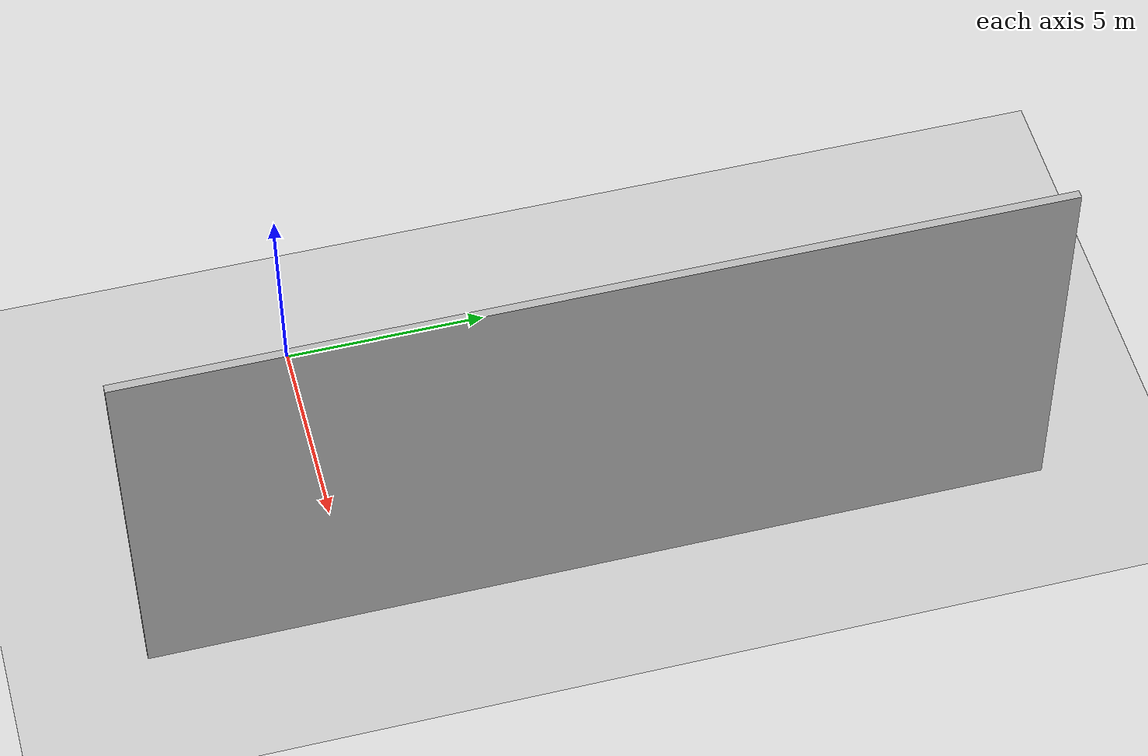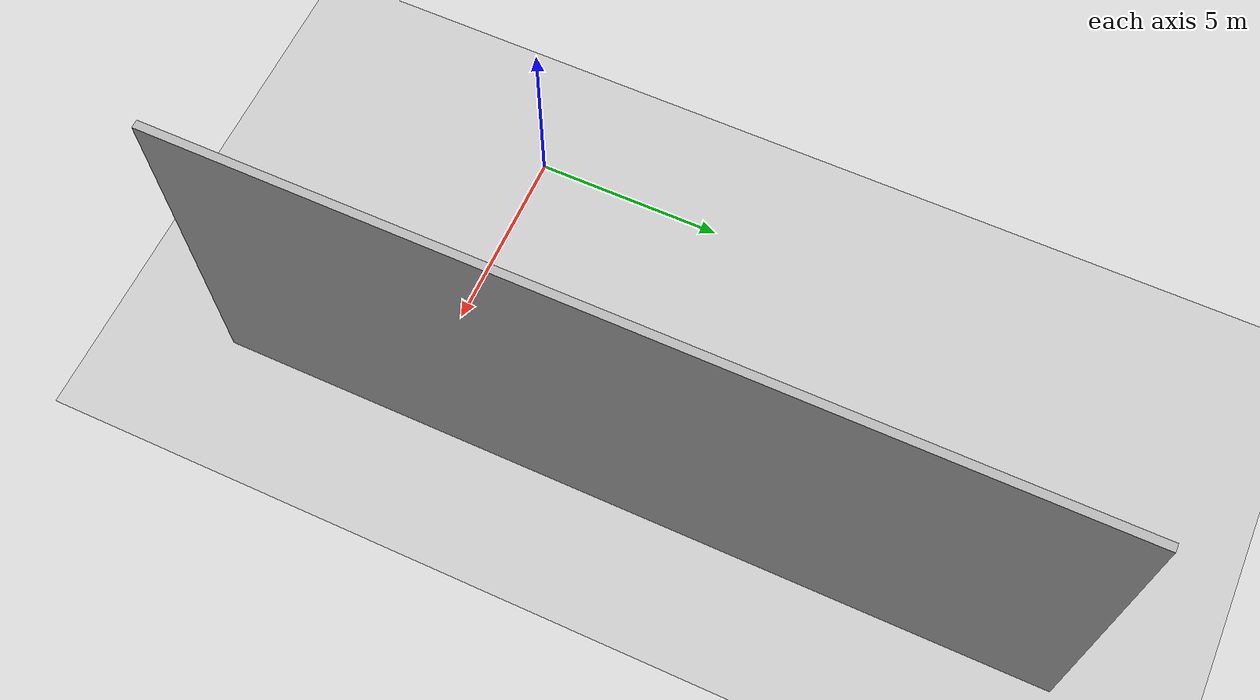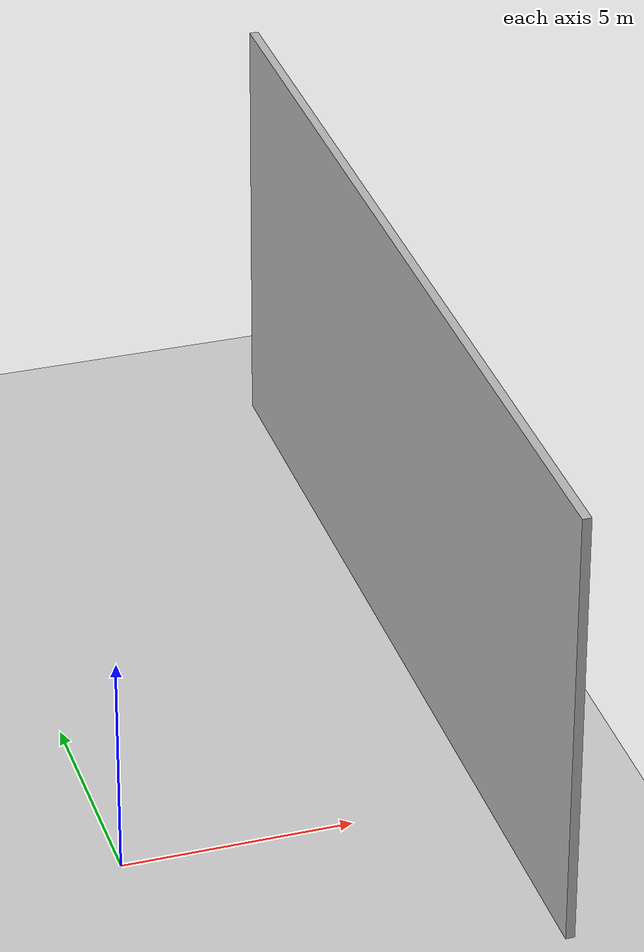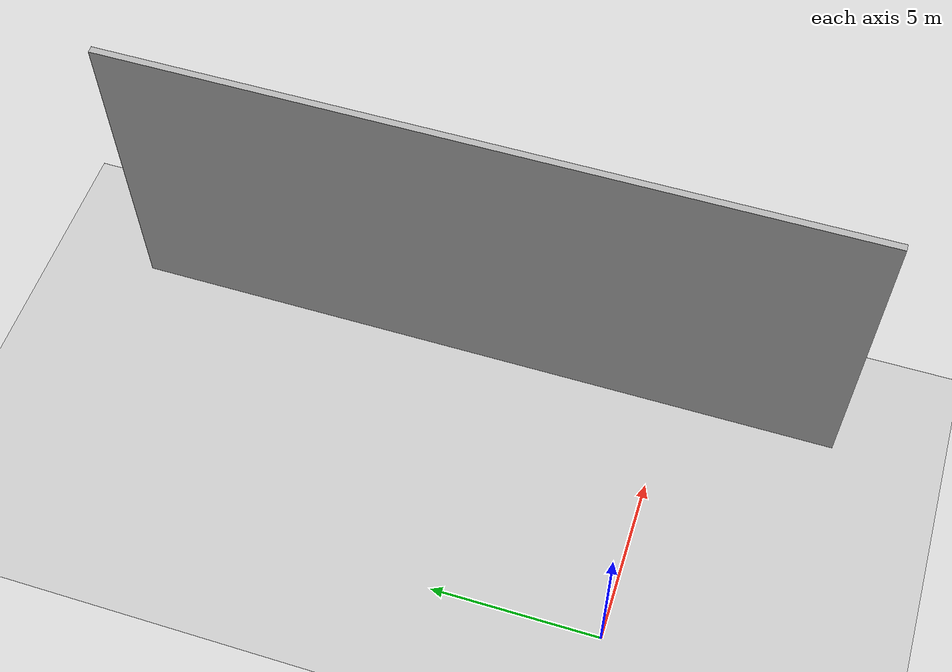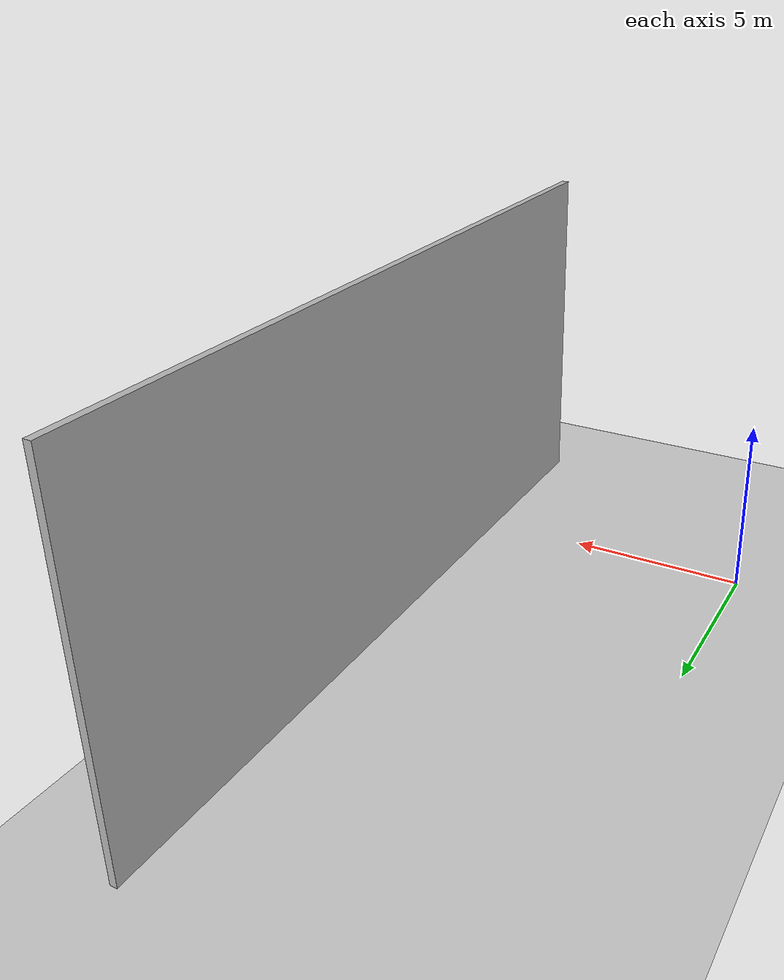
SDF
<sdf version="1.4">
 <world name="default">
  <include><uri>model://ground_plane</uri></include>
  <include><uri>model://sun</uri></include>
  <plugin name="ros_interface_plugin" filename="librotors_gazebo_ros_interface_plugin.so"/>
  <spherical_coordinates>
   <surface_model>EARTH_WGS84</surface_model>
   <latitude_deg>47.3667</latitude_deg>
   <longitude_deg>8.5500</longitude_deg>
   <elevation>500.0</elevation>
   <heading_deg>0</heading_deg>
  </spherical_coordinates>
  <physics type="ode">
   <ode>
    <solver><type>quick</type><iters>1000</iters><sor>1.3</sor></solver>
    <constraints>
     <cfm>0</cfm>
     <erp>0.2</erp>
     <contact_max_correcting_vel>100</contact_max_correcting_vel>
     <contact_surface_layer>0.001</contact_surface_layer>
    </constraints>
   </ode>
   <max_step_size>0.005</max_step_size>
   <real_time_factor>10</real_time_factor>
   <real_time_update_rate>600</real_time_update_rate>
   <gravity>0 0 -9.8</gravity>
  </physics>
  <model name="grey_wall_2">
   <static>1</static>
   <link name="link">
    <pose>0 0 5.0 0 0 1.5708</pose>
    <collision name="collision"><geometry><box><size>22.0 0.2 10.0</size></box></geometry></collision>
    <visual name="visual">
     <cast_shadows>0</cast_shadows>
     <geometry><box><size>22.0 0.2 10.0</size></box></geometry>
    </visual>
   </link>
   <pose>8.0 6.0 0 0 -0 0</pose>
  </model>
 </world>
</sdf>
